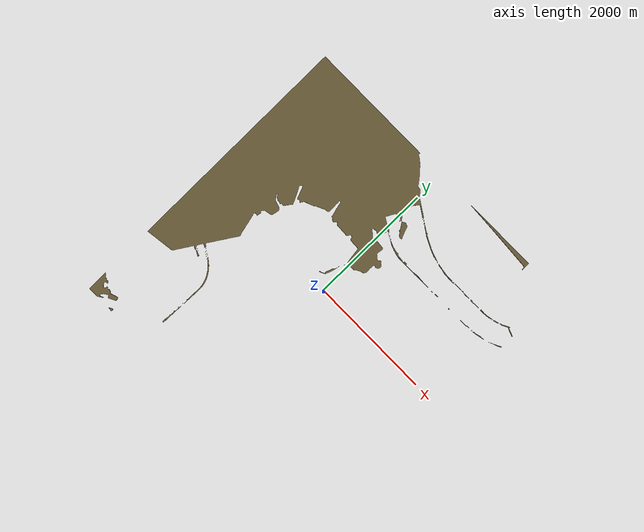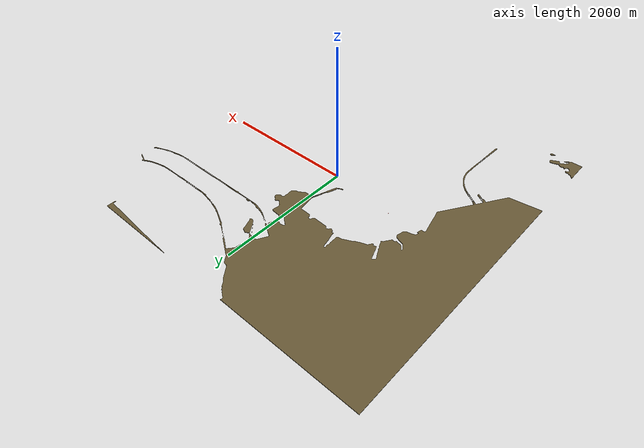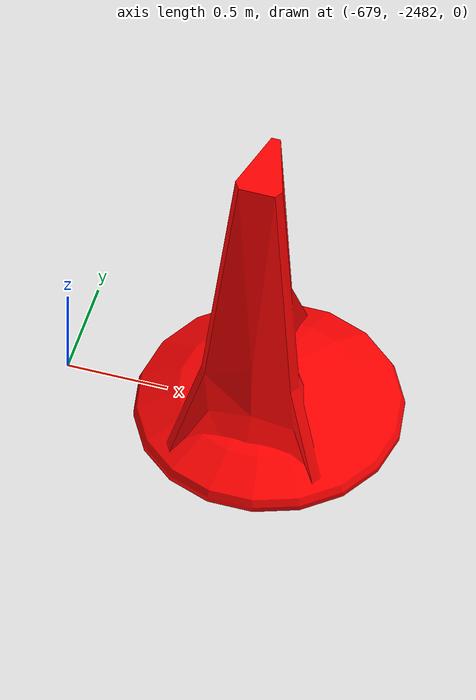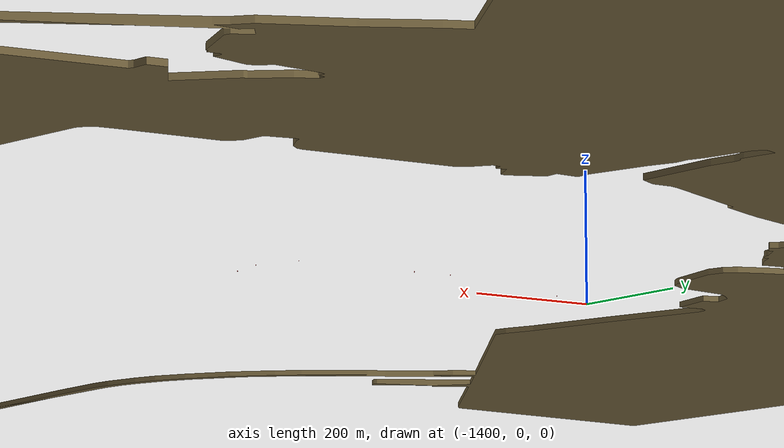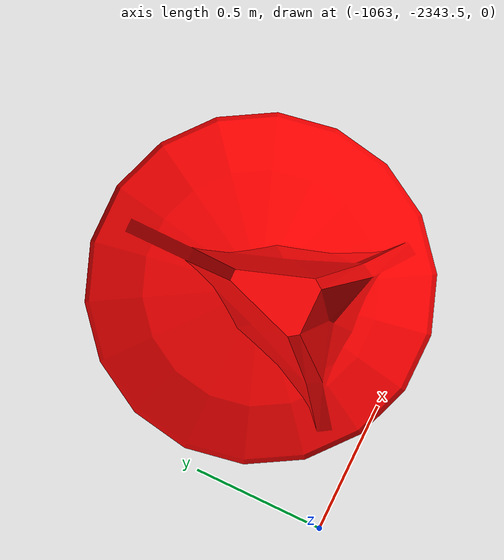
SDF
<?xml version="1.0"?>
<sdf version="1.9">
  <model name="ccs_chart_obstacles_enc_5km">
    <static>true</static>
    <link name="chart_obstacle_001">
      <pose>-1444.372646 1082.602142 0 0 0 0</pose>
      <visual name="visual">
        <geometry>
          <mesh>
            <uri>meshes/chart_obstacle_001.obj</uri>
          </mesh>
        </geometry>
        <material>
          <ambient>0.32 0.28 0.18 1</ambient>
          <diffuse>0.42 0.36 0.22 1</diffuse>
        </material>
      </visual>
      <collision name="collision">
        <geometry>
          <mesh>
            <uri>meshes/chart_obstacle_001.obj</uri>
          </mesh>
        </geometry>
      </collision>
    </link>
    <link name="chart_obstacle_002">
      <pose>-2363.378606 -2361.534128 0 0 0 0</pose>
      <visual name="visual">
        <geometry>
          <mesh>
            <uri>meshes/chart_obstacle_002.obj</uri>
          </mesh>
        </geometry>
        <material>
          <ambient>0.32 0.28 0.18 1</ambient>
          <diffuse>0.42 0.36 0.22 1</diffuse>
        </material>
      </visual>
      <collision name="collision">
        <geometry>
          <mesh>
            <uri>meshes/chart_obstacle_002.obj</uri>
          </mesh>
        </geometry>
      </collision>
    </link>
    <link name="chart_obstacle_003">
      <pose>1481.363891 2472.400333 0 0 0 0</pose>
      <visual name="visual">
        <geometry>
          <mesh>
            <uri>meshes/chart_obstacle_003.obj</uri>
          </mesh>
        </geometry>
        <material>
          <ambient>0.32 0.28 0.18 1</ambient>
          <diffuse>0.42 0.36 0.22 1</diffuse>
        </material>
      </visual>
      <collision name="collision">
        <geometry>
          <mesh>
            <uri>meshes/chart_obstacle_003.obj</uri>
          </mesh>
        </geometry>
      </collision>
    </link>
    <link name="chart_obstacle_004">
      <pose>-2048.691670 -2486.928484 0 0 0 0</pose>
      <visual name="visual">
        <geometry>
          <mesh>
            <uri>meshes/chart_obstacle_004.obj</uri>
          </mesh>
        </geometry>
        <material>
          <ambient>0.32 0.28 0.18 1</ambient>
          <diffuse>0.42 0.36 0.22 1</diffuse>
        </material>
      </visual>
      <collision name="collision">
        <geometry>
          <mesh>
            <uri>meshes/chart_obstacle_004.obj</uri>
          </mesh>
        </geometry>
      </collision>
    </link>
    <link name="chart_obstacle_005">
      <pose>-47.629930 42.000000 0 0 0 0</pose>
      <visual name="visual">
        <pose>0 0 0 1.57079 0 0</pose>
        <geometry>
          <mesh>
            <uri>model://mb_marker_buoy_red/meshes/mb_marker_buoy.dae</uri>
            <scale>2 2 2</scale>
          </mesh>
        </geometry>
        <material>
          <ambient>0.8 0.0 0.0 1</ambient>
          <diffuse>1.0 0.0 0.0 1</diffuse>
        </material>
      </visual>
      <collision name="collision">
        <geometry>
          <mesh>
            <uri>meshes/chart_obstacle_005.obj</uri>
          </mesh>
        </geometry>
      </collision>
    </link>
    <link name="chart_obstacle_006">
      <pose>-1004.790020 120.377649 0 0 0 0</pose>
      <visual name="visual">
        <pose>0 0 0 1.57079 0 0</pose>
        <geometry>
          <mesh>
            <uri>model://mb_marker_buoy_red/meshes/mb_marker_buoy.dae</uri>
            <scale>2 2 2</scale>
          </mesh>
        </geometry>
        <material>
          <ambient>0.8 0.0 0.0 1</ambient>
          <diffuse>1.0 0.0 0.0 1</diffuse>
        </material>
      </visual>
      <collision name="collision">
        <geometry>
          <mesh>
            <uri>meshes/chart_obstacle_006.obj</uri>
          </mesh>
        </geometry>
      </collision>
    </link>
    <link name="chart_obstacle_007">
      <pose>-800.116101 -13.573786 0 0 0 0</pose>
      <visual name="visual">
        <pose>0 0 0 1.57079 0 0</pose>
        <geometry>
          <mesh>
            <uri>model://mb_marker_buoy_red/meshes/mb_marker_buoy.dae</uri>
            <scale>2 2 2</scale>
          </mesh>
        </geometry>
        <material>
          <ambient>0.8 0.0 0.0 1</ambient>
          <diffuse>1.0 0.0 0.0 1</diffuse>
        </material>
      </visual>
      <collision name="collision">
        <geometry>
          <mesh>
            <uri>meshes/chart_obstacle_007.obj</uri>
          </mesh>
        </geometry>
      </collision>
    </link>
    <link name="chart_obstacle_008">
      <pose>393.573786 1336.116101 0 0 0 0</pose>
      <visual name="visual">
        <pose>0 0 0 1.57079 0 0</pose>
        <geometry>
          <mesh>
            <uri>model://mb_marker_buoy_red/meshes/mb_marker_buoy.dae</uri>
            <scale>2 2 2</scale>
          </mesh>
        </geometry>
        <material>
          <ambient>0.8 0.0 0.0 1</ambient>
          <diffuse>1.0 0.0 0.0 1</diffuse>
        </material>
      </visual>
      <collision name="collision">
        <geometry>
          <mesh>
            <uri>meshes/chart_obstacle_008.obj</uri>
          </mesh>
        </geometry>
      </collision>
    </link>
    <link name="chart_obstacle_009">
      <pose>-426.544574 -25.846768 0 0 0 0</pose>
      <visual name="visual">
        <pose>0 0 0 1.57079 0 0</pose>
        <geometry>
          <mesh>
            <uri>model://mb_marker_buoy_red/meshes/mb_marker_buoy.dae</uri>
            <scale>2 2 2</scale>
          </mesh>
        </geometry>
        <material>
          <ambient>0.8 0.0 0.0 1</ambient>
          <diffuse>1.0 0.0 0.0 1</diffuse>
        </material>
      </visual>
      <collision name="collision">
        <geometry>
          <mesh>
            <uri>meshes/chart_obstacle_009.obj</uri>
          </mesh>
        </geometry>
      </collision>
    </link>
    <link name="chart_obstacle_010">
      <pose>-1309.455426 45.846768 0 0 0 0</pose>
      <visual name="visual">
        <pose>0 0 0 1.57079 0 0</pose>
        <geometry>
          <mesh>
            <uri>model://mb_marker_buoy_red/meshes/mb_marker_buoy.dae</uri>
            <scale>2 2 2</scale>
          </mesh>
        </geometry>
        <material>
          <ambient>0.8 0.0 0.0 1</ambient>
          <diffuse>1.0 0.0 0.0 1</diffuse>
        </material>
      </visual>
      <collision name="collision">
        <geometry>
          <mesh>
            <uri>meshes/chart_obstacle_010.obj</uri>
          </mesh>
        </geometry>
      </collision>
    </link>
    <link name="chart_obstacle_011">
      <pose>-678.153232 -2481.455426 0 0 0 0</pose>
      <visual name="visual">
        <pose>0 0 0 1.57079 0 0</pose>
        <geometry>
          <mesh>
            <uri>model://mb_marker_buoy_red/meshes/mb_marker_buoy.dae</uri>
            <scale>2 2 2</scale>
          </mesh>
        </geometry>
        <material>
          <ambient>0.8 0.0 0.0 1</ambient>
          <diffuse>1.0 0.0 0.0 1</diffuse>
        </material>
      </visual>
      <collision name="collision">
        <geometry>
          <mesh>
            <uri>meshes/chart_obstacle_011.obj</uri>
          </mesh>
        </geometry>
      </collision>
    </link>
    <link name="chart_obstacle_012">
      <pose>-790.153232 48.544574 0 0 0 0</pose>
      <visual name="visual">
        <pose>0 0 0 1.57079 0 0</pose>
        <geometry>
          <mesh>
            <uri>model://mb_marker_buoy_red/meshes/mb_marker_buoy.dae</uri>
            <scale>2 2 2</scale>
          </mesh>
        </geometry>
        <material>
          <ambient>0.8 0.0 0.0 1</ambient>
          <diffuse>1.0 0.0 0.0 1</diffuse>
        </material>
      </visual>
      <collision name="collision">
        <geometry>
          <mesh>
            <uri>meshes/chart_obstacle_012.obj</uri>
          </mesh>
        </geometry>
      </collision>
    </link>
    <link name="chart_obstacle_013">
      <pose>451.455426 1262.153232 0 0 0 0</pose>
      <visual name="visual">
        <pose>0 0 0 1.57079 0 0</pose>
        <geometry>
          <mesh>
            <uri>model://mb_marker_buoy_red/meshes/mb_marker_buoy.dae</uri>
            <scale>2 2 2</scale>
          </mesh>
        </geometry>
        <material>
          <ambient>0.8 0.0 0.0 1</ambient>
          <diffuse>1.0 0.0 0.0 1</diffuse>
        </material>
      </visual>
      <collision name="collision">
        <geometry>
          <mesh>
            <uri>meshes/chart_obstacle_013.obj</uri>
          </mesh>
        </geometry>
      </collision>
    </link>
    <link name="chart_obstacle_014">
      <pose>-1062.292555 -2342.922693 0 0 0 0</pose>
      <visual name="visual">
        <pose>0 0 0 1.57079 0 0</pose>
        <geometry>
          <mesh>
            <uri>model://mb_marker_buoy_red/meshes/mb_marker_buoy.dae</uri>
            <scale>2 2 2</scale>
          </mesh>
        </geometry>
        <material>
          <ambient>0.8 0.0 0.0 1</ambient>
          <diffuse>1.0 0.0 0.0 1</diffuse>
        </material>
      </visual>
      <collision name="collision">
        <geometry>
          <mesh>
            <uri>meshes/chart_obstacle_014.obj</uri>
          </mesh>
        </geometry>
      </collision>
    </link>
    <link name="chart_obstacle_015">
      <pose>-1062.292555 125.077307 0 0 0 0</pose>
      <visual name="visual">
        <pose>0 0 0 1.57079 0 0</pose>
        <geometry>
          <mesh>
            <uri>model://mb_marker_buoy_red/meshes/mb_marker_buoy.dae</uri>
            <scale>2 2 2</scale>
          </mesh>
        </geometry>
        <material>
          <ambient>0.8 0.0 0.0 1</ambient>
          <diffuse>1.0 0.0 0.0 1</diffuse>
        </material>
      </visual>
      <collision name="collision">
        <geometry>
          <mesh>
            <uri>meshes/chart_obstacle_015.obj</uri>
          </mesh>
        </geometry>
      </collision>
    </link>
    <link name="chart_obstacle_016">
      <pose>-816.000000 116.000000 0 0 0 0</pose>
      <visual name="visual">
        <pose>0 0 0 1.57079 0 0</pose>
        <geometry>
          <mesh>
            <uri>model://mb_marker_buoy_red/meshes/mb_marker_buoy.dae</uri>
            <scale>2 2 2</scale>
          </mesh>
        </geometry>
        <material>
          <ambient>0.8 0.0 0.0 1</ambient>
          <diffuse>1.0 0.0 0.0 1</diffuse>
        </material>
      </visual>
      <collision name="collision">
        <geometry>
          <mesh>
            <uri>meshes/chart_obstacle_016.obj</uri>
          </mesh>
        </geometry>
      </collision>
    </link>
  </model>
</sdf>
